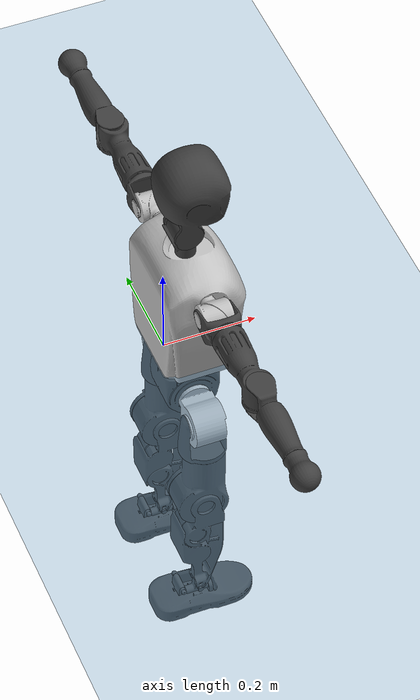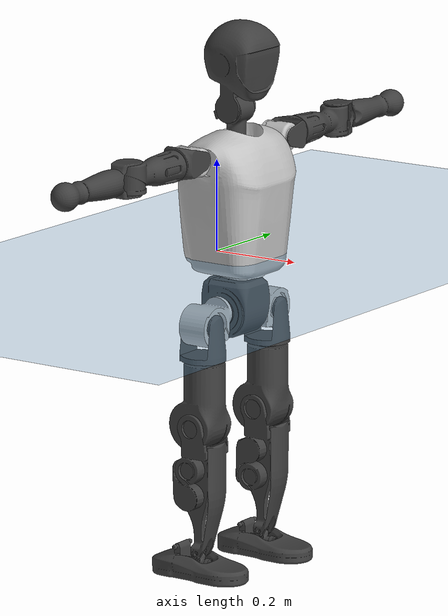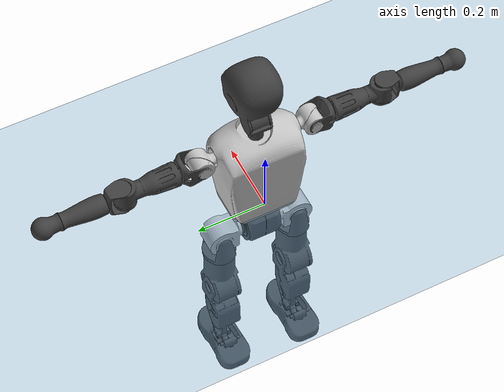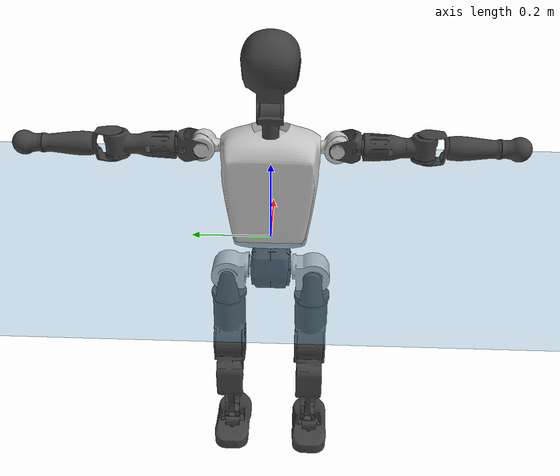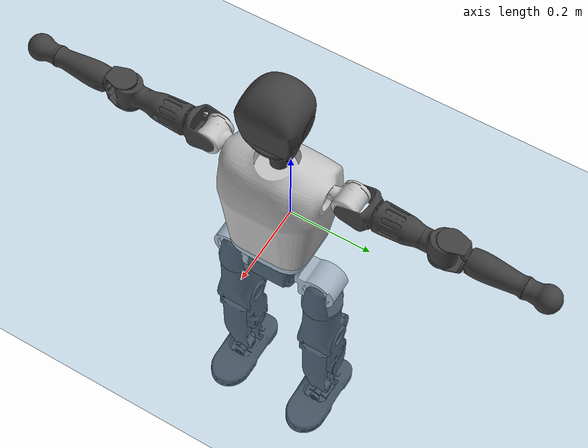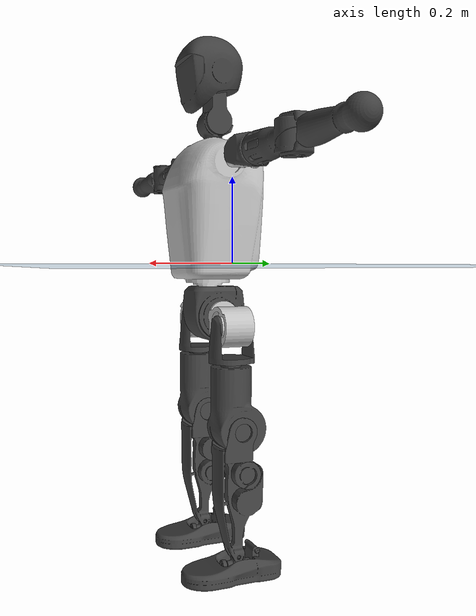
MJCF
<mujoco model="T1">
  <compiler angle="radian" assetdir="assets" balanceinertia="true" inertiafromgeom="false"/>

  <option timestep="0.005" density="1.2" viscosity="2e-05"/>

  <size nkey="1"/>

  <visual>
    <quality shadowsize="8192"/>
    <map shadowclip="0.5"/>
  </visual>

  <default>
    <default class="/">
      <joint armature="0.01" damping="0.01" frictionloss="0.1"/>
      <geom contype="0" conaffinity="0" group="1" solref="-1000 -80"/>
      <site size="0.01 0.005 0.005" group="5"/>
      <general forcelimited="true" biastype="affine" gainprm="25" biasprm="0 -25 -0.6"/>
      <default class="t1">
        <geom rgba="0.25 0.25 0.25 1"/>
        <default class="visual">
          <geom type="mesh" group="2"/>
        </default>
        <default class="collision">
          <geom group="3"/>
        </default>
        <default class="foot">
          <geom size="0.1115 0.05 0.015" type="box" condim="6" group="4" priority="1" solimp="0.015 1 0.015"/>
        </default>
        <default class="reward_collision_sphere">
          <geom group="5" rgba="1 0 0 1"/>
        </default>
      </default>
    </default>
  </default>

  <asset>
    <texture type="skybox" colorspace="auto" name="//unnamed_texture_0" builtin="gradient" rgb1="0.95 0.95 0.95" rgb2="0.95 0.95 0.95" width="100" height="600"/>
    <texture type="2d" colorspace="auto" name="texplane" builtin="checker" rgb1="0.345 0.575 0.748" rgb2="0.345 0.575 0.748" markrgb="1 1 1" width="512" height="512"/>
    <material name="MatPlane" class="/" texture="texplane" texuniform="true" texrepeat="2 2" specular="0.9"/>
    <mesh name="Trunk" class="/" file="Trunk.stl"/>
    <mesh name="H1" class="/" file="H1.stl"/>
    <mesh name="H2" class="/" file="H2.stl"/>
    <mesh name="AL1" class="/" file="AL1.stl"/>
    <mesh name="AL2" class="/" file="AL2.stl"/>
    <mesh name="AL3" class="/" file="AL3.stl"/>
    <mesh name="left_hand_link" class="/" file="left_hand_link.stl"/>
    <mesh name="AR1" class="/" file="AR1.stl"/>
    <mesh name="AR2" class="/" file="AR2.stl"/>
    <mesh name="AR3" class="/" file="AR3.stl"/>
    <mesh name="right_hand_link" class="/" file="right_hand_link.stl"/>
    <mesh name="Waist" class="/" file="Waist.stl"/>
    <mesh name="Hip_Pitch_Left" class="/" file="Hip_Pitch_Left.stl"/>
    <mesh name="Hip_Roll_Left" class="/" file="Hip_Roll_Left.stl"/>
    <mesh name="Hip_Yaw_Left" class="/" file="Hip_Yaw_Left.stl"/>
    <mesh name="Shank_Left" class="/" file="Shank_Left.stl"/>
    <mesh name="Ankle_Cross_Left" class="/" file="Ankle_Cross_Left.stl"/>
    <mesh name="left_foot_link" class="/" file="left_foot_link.stl"/>
    <mesh name="Hip_Pitch_Right" class="/" file="Hip_Pitch_Right.stl"/>
    <mesh name="Hip_Roll_Right" class="/" file="Hip_Roll_Right.stl"/>
    <mesh name="Hip_Yaw_Right" class="/" file="Hip_Yaw_Right.stl"/>
    <mesh name="Shank_Right" class="/" file="Shank_Right.stl"/>
    <mesh name="Ankle_Cross_Right" class="/" file="Ankle_Cross_Right.stl"/>
    <mesh name="right_foot_link" class="/" file="right_foot_link.stl"/>
  </asset>

  <worldbody>
    <geom name="floor" class="/" size="100 100 0.125" type="plane" group="0" material="MatPlane"/>
    <light name="toplight_shadow" class="/" pos="0 0 5" dir="0.0990148 0.0990148 -0.990148" type="directional" ambient="0.04 0.04 0.04" diffuse="0.55 0.55 0.55" specular="0.12 0.12 0.12"/>
    <light name="toplight_fill" class="/" pos="0 0 5" dir="0.0990148 0.0990148 -0.990148" type="directional" castshadow="false" ambient="0.04 0.04 0.04" diffuse="0.3 0.3 0.3" specular="0.08 0.08 0.08"/>
    <body name="trunk" childclass="t1" pos="-0.000334303 0.00270729 -0.000796906" quat="1 -2.99948e-05 -8.82276e-06 8.37405e-05">
      <inertial pos="0.0409773 -0.000133292 0.1083" quat="0.999973 -0.000246442 -0.0073209 -0.000484954" mass="10.4219" diaginertia="0.0224124 0.115155 0.0635511"/>
      <joint name="//unnamed_joint_0" type="free" armature="0" damping="0" frictionloss="0"/>
      <geom name="//unnamed_geom_1" class="visual" rgba="0.76 0.76 0.76 1" mesh="Trunk"/>
      <geom name="//unnamed_geom_2" class="collision" size="0.0719452 0.0959269 0.14389" pos="0.045703 0 0.124415" type="box"/>
      <geom name="//unnamed_geom_3" class="reward_collision_sphere" size="0.110316" pos="0.045703 0 0.103679"/>
      <geom name="//unnamed_geom_4" class="reward_collision_sphere" size="0.014389" pos="0.045703 0.0917405 0"/>
      <geom name="//unnamed_geom_5" class="reward_collision_sphere" size="0.014389" pos="0.045703 -0.0917405 0"/>
      <geom name="//unnamed_geom_6" class="reward_collision_sphere" size="0.014389" pos="0.045703 0.115485 0.186622"/>
      <geom name="//unnamed_geom_7" class="reward_collision_sphere" size="0.014389" pos="0.045703 -0.115485 0.186622"/>
      <site name="imu" pos="-0.00459748 0.00300204 0.00113278" size="0.00959269"/>
      <camera name="track" pos="0 -2.1586 0" quat="0.707107 0.707107 0 0" mode="trackcom"/>
      <camera name="ego_camera" pos="0.0929294 0 0.435452" quat="-0.5 -0.5 0.5 0.5"/>
      <body name="H1" pos="0.0491782 -4.44322e-06 0.253351" quat="1 0.000406242 -0.00042747 -0.000284363">
        <inertial pos="0.000773405 0.000942439 0.0610642" quat="0.764963 -0.00856404 0.00189022 0.644015" mass="0.408442" diaginertia="6.46465e-05 0.000336425 0.000175232"/>
        <joint name="AAHead_yaw" pos="0 0 0" axis="0.00412427 -0.000656762 0.999991" range="-1.56537 1.53553" armature="0.00924642" damping="0" frictionloss="0.107884"/>
        <geom name="//unnamed_geom_8" class="visual" mesh="H1"/>
        <body name="H2" pos="-0.00332036 0.00147728 0.0656475" quat="1 -9.28199e-05 -0.000248661 -8.23756e-06">
          <inertial pos="0.00495977 0.00124971 0.10212" quat="0.988526 0.105354 -0.0747684 -0.0782704" mass="0.555275" diaginertia="0.000506147 0.00274049 0.00206452"/>
          <joint name="Head_pitch" pos="0 0 0" axis="-0.00529187 -0.999985 -0.00152506" range="-1.27127 0.366532" armature="0.0103047" damping="0.00963648" frictionloss="0.098186"/>
          <geom name="//unnamed_geom_9" class="visual" mesh="H2"/>
          <geom name="//unnamed_geom_10" class="collision" size="0.0767415" pos="0.00761717 0 0.114047"/>
          <geom name="//unnamed_geom_11" class="reward_collision_sphere" size="0.0863342" pos="0.0152343 0 0.103679"/>
        </body>
      </body>
      <body name="AL1" pos="0.0450809 0.117979 0.230117" quat="1 8.96789e-05 0.000365209 0.000172508">
        <inertial pos="-0.000983918 0.045662 -0.0031354" quat="0.514416 0.491948 -0.500464 0.492847" mass="0.451747" diaginertia="0.00034582 0.00182172 0.000341316"/>
        <joint name="Left_Shoulder_Pitch" pos="0 0 0" axis="-0.00261893 0.999988 -0.00412246" range="-3.31282 1.22372" armature="0.00923906" damping="0.0236269" frictionloss="0.0833621"/>
        <geom name="//unnamed_geom_12" class="visual" rgba="0.76 0.76 0.76 1" mesh="AL1"/>
        <body name="AL2" pos="0.000687023 0.0498804 -0.0006156" quat="1 9.76214e-05 0.000463088 9.05278e-05">
          <inertial pos="0.000619493 0.0418791 -0.00158655" quat="0.490566 0.515001 -0.47638 0.516895" mass="0.144273" diaginertia="0.000100171 0.000485623 0.000214476"/>
          <joint name="Left_Shoulder_Roll" pos="0 0 0" axis="-0.999997 -0.00100753 -0.00209535" range="-1.57749 1.7137" armature="0.00967883" damping="0.00387931" frictionloss="0.0919101"/>
          <geom name="//unnamed_geom_13" class="visual" mesh="AL2"/>
          <body name="AL3" pos="-0.000261663 0.0628979 -0.000361636" quat="1 4.55183e-05 -0.000122971 -9.05757e-05">
            <inertial pos="-0.00127735 0.0920608 0.0013663" quat="0.706099 0.708109 -0.00102841 0.00230574" mass="0.908118" diaginertia="0.00339949 0.01886 0.000714821"/>
            <joint name="Left_Elbow_Pitch" pos="0 0 0" axis="0.00126177 -0.99998 0.00616166" range="-2.26235 2.25601" armature="0.00879454" damping="0.0158295" frictionloss="0.108582"/>
            <geom name="//unnamed_geom_14" class="visual" mesh="AL3"/>
            <geom name="//unnamed_geom_15" class="collision" size="0.0287781 0.0719452" pos="0 0.053965 0" quat="0.707105 0.707108 0 0" type="cylinder"/>
            <geom name="//unnamed_geom_16" class="reward_collision_sphere" size="0.0345337"/>
            <body name="left_hand_link" pos="-0.00241603 0.15825 0.000151584" quat="0.999999 -0.000692213 0.000969065 -1.56478e-05">
              <inertial pos="0.00018432 0.121011 0.00313199" quat="0.704734 0.709469 -0.000980179 0.00179045" mass="0.280177" diaginertia="0.00208619 0.0123438 0.00025872"/>
              <joint name="Left_Elbow_Yaw" pos="0 0 0" axis="-0.0067467 0.00448894 0.999967" range="-2.40557 -0.0215164" armature="0.00974214" damping="0.00754605" frictionloss="0.109029"/>
              <geom name="//unnamed_geom_17" class="visual" mesh="left_hand_link"/>
              <geom name="//unnamed_geom_18" class="collision" size="0.0287781 0.083936" pos="0 0.140309 0" quat="0.707105 0.707108 0 0" type="cylinder"/>
              <geom name="//unnamed_geom_19" class="reward_collision_sphere" size="0.0479635"/>
              <geom name="//unnamed_geom_20" class="reward_collision_sphere" size="0.0335744" pos="0 0.118723 0"/>
              <geom name="//unnamed_geom_21" class="reward_collision_sphere" size="0.0335744" pos="0 0.232049 0"/>
            </body>
          </body>
        </body>
      </body>
      <body name="AR1" pos="0.0461165 -0.114432 0.22919" quat="1 0.000122475 -2.94263e-05 -0.000144418">
        <inertial pos="-0.00238267 -0.0515482 0.00127068" quat="0.504408 0.502887 -0.507955 0.484415" mass="0.459648" diaginertia="0.00033161 0.00184025 0.000342072"/>
        <joint name="Right_Shoulder_Pitch" pos="0 0 0" axis="0.00193309 -0.999888 0.0148699" range="-1.22789 3.3632" armature="0.00920706" damping="0" frictionloss="0.0935017"/>
        <geom name="//unnamed_geom_22" class="visual" rgba="0.76 0.76 0.76 1" mesh="AR1"/>
        <body name="AR2" pos="-0.000643234 -0.0476056 0.00375696" quat="0.999999 -0.000578131 0.00130215 -0.000234348">
          <inertial pos="0.000141463 -0.0404871 0.00292578" quat="0.513777 0.490004 -0.50849 0.487203" mass="0.138861" diaginertia="0.000103395 0.000506407 0.000208131"/>
          <joint name="Right_Shoulder_Roll" pos="0 0 0" axis="-0.999909 -0.00773228 -0.0110739" stiffness="0.00100237" range="-1.70355 1.57691" armature="0.00970358" damping="0.0213151" frictionloss="0.103568"/>
          <geom name="//unnamed_geom_23" class="visual" mesh="AR2"/>
          <body name="AR3" pos="0.0017009 -0.0632297 -0.00235429" quat="1 0.000619009 -1.71656e-05 -0.000578715">
            <inertial pos="-0.000600027 -0.0931203 0.00136875" quat="0.716388 0.697696 -0.000327116 -0.0027673" mass="0.907614" diaginertia="0.00318685 0.0182465 0.000746887"/>
            <joint name="Right_Elbow_Pitch" pos="0 0 0" axis="0.0140663 0.999901 0.000539543" range="-2.28396 2.20794" armature="0.0084231" damping="0.0137892" frictionloss="0.0986879"/>
            <geom name="//unnamed_geom_24" class="visual" mesh="AR3"/>
            <geom name="//unnamed_geom_25" class="collision" size="0.0287781 0.0719452" pos="0 -0.053965 0" quat="0.707105 0.707108 0 0" type="cylinder"/>
            <geom name="//unnamed_geom_26" class="reward_collision_sphere" size="0.0345337"/>
            <body name="right_hand_link" pos="4.46334e-05 -0.15841 0.00059162" quat="1 -1.16714e-05 -3.9386e-06 -3.02566e-06">
              <inertial pos="-0.00249578 -0.115806 -0.00108257" quat="0.706377 0.707767 0.00841151 0.00512738" mass="0.279391" diaginertia="0.00208007 0.0111273 0.00025723"/>
              <joint name="Right_Elbow_Yaw" pos="0 0 0" axis="-0.00588279 -0.0024984 0.99998" range="0.012676 2.43207" armature="0.0085852" damping="0" frictionloss="0.0913454"/>
              <geom name="//unnamed_geom_27" class="visual" mesh="right_hand_link"/>
              <geom name="//unnamed_geom_28" class="collision" size="0.0287781 0.083936" pos="0 -0.140309 0" quat="0.707105 0.707108 0 0" type="cylinder"/>
              <geom name="//unnamed_geom_29" class="reward_collision_sphere" size="0.0479635"/>
              <geom name="//unnamed_geom_30" class="reward_collision_sphere" size="0.0335744" pos="0 -0.118723 0"/>
              <geom name="//unnamed_geom_31" class="reward_collision_sphere" size="0.0335744" pos="0 -0.232049 0"/>
            </body>
          </body>
        </body>
      </body>
      <body name="Waist" pos="0.0480706 -0.00172671 -0.117359" quat="1 0.000407286 -0.00010494 -0.000406699">
        <inertial pos="0.00519209 -0.00164546 0.0103903" quat="0.983038 0.00169889 -0.183393 0.000979202" mass="2.29982" diaginertia="0.00134394 0.00796277 0.00554591"/>
        <joint name="Waist" pos="0 0 0" axis="-0.00621642 -0.00366292 0.999974" range="-1.618 1.62763" armature="0.00929515" damping="0.00341723" frictionloss="0.0937035"/>
        <geom name="//unnamed_geom_32" class="visual" mesh="Waist"/>
        <body name="Hip_Pitch_Left" pos="0.000980366 0.114544 0.0014115" quat="1 -8.07916e-05 -0.000174994 -0.000267827">
          <inertial pos="-0.00168593 -0.00862888 -0.0191" quat="0.97586 0.218136 0.0102787 -0.00288518" mass="0.91554" diaginertia="0.000479646 0.00211354 0.00151286"/>
          <joint name="Left_Hip_Pitch" pos="0 0 0" axis="0.0107022 0.999939 -0.00263625" range="-1.76029 1.55841" armature="0.00949043" damping="0" frictionloss="0.0872616"/>
          <geom name="//unnamed_geom_33" class="visual" rgba="0.76 0.76 0.76 1" mesh="Hip_Pitch_Left"/>
          <body name="Hip_Roll_Left" pos="0.00373293 0.000917769 -0.0205421" quat="1 -4.08222e-05 0.000240222 -0.000107631">
            <inertial pos="0.00238236 -0.000645494 -0.0560651" quat="0.69825 -0.00402675 -0.0112913 0.715754" mass="0.353687" diaginertia="0.000456369 0.00237095 0.000628803"/>
            <joint name="Left_Hip_Roll" pos="0 0 0" axis="-0.999965 -0.00240144 -0.00797735" range="-1.51763 0.197809" armature="0.00948495" damping="0.0220928" frictionloss="0.0838912"/>
            <geom name="//unnamed_geom_34" class="visual" mesh="Hip_Roll_Left"/>
            <geom name="//unnamed_geom_35" class="reward_collision_sphere" size="0.0527598"/>
            <body name="Hip_Yaw_Left" pos="-0.00105255 0.000199201 -0.0852903" quat="1 5.01898e-05 -2.05971e-05 -7.31363e-05">
              <inertial pos="-0.00365646 -0.00129793 -0.0937612" quat="0.693047 -0.0414338 -0.0247518 0.719275" mass="1.8361" diaginertia="0.00652381 0.0377097 0.00308326"/>
              <joint name="Left_Hip_Yaw" pos="0 0 0" axis="-0.00891732 -0.00327363 -0.999955" range="-0.991605 1.0542" armature="0.00836492" damping="0" frictionloss="0.0887501"/>
              <geom name="//unnamed_geom_36" class="visual" mesh="Hip_Yaw_Left"/>
              <geom name="//unnamed_geom_37" class="collision" size="0.0479635 0.0767415" type="cylinder"/>
              <body name="Shank_Left" pos="-0.0119238 0.00114229 -0.137864" quat="1 -2.91632e-05 0.000180944 -0.000113962">
                <inertial pos="-0.00162256 0.000577783 -0.13166" quat="0.997103 0.00338467 -0.0285889 0.0704017" mass="1.59143" diaginertia="0.0094413 0.0529523 0.0022746"/>
                <joint name="Left_Knee_Pitch" pos="0 0 0" axis="0.00182284 0.999806 0.0195961" range="-0.0342465 2.33552" armature="0.0107994" damping="0" frictionloss="0.0902401"/>
                <geom name="//unnamed_geom_38" class="visual" mesh="Shank_Left"/>
                <geom name="//unnamed_geom_39" class="collision" size="0.0479635 0.0719452" pos="0 0 -0.124415" type="cylinder"/>
                <geom name="//unnamed_geom_40" class="reward_collision_sphere" size="0.0623525"/>
                <body name="Ankle_Cross_Left" pos="-0.000659693 -0.00265904 -0.289945" quat="1 -5.11318e-05 5.26696e-05 0.000251318">
                  <inertial pos="-0.00327311 0.00079655 -0.00930111" quat="0.442121 0.54969 0.551623 0.445065" mass="0.0678212" diaginertia="7.45968e-06 3.87638e-05 1.40021e-05"/>
                  <joint name="Left_Ankle_Pitch" pos="0 0 0" axis="0.00497676 0.999944 0.00936195" range="-0.858384 0.317502" armature="0.00952592" damping="0.0104633" frictionloss="0.0982377"/>
                  <geom name="//unnamed_geom_41" class="visual" mesh="Ankle_Cross_Left"/>
                  <body name="left_foot_link" pos="0.00176856 -0.0012614 -0.0118189" quat="0.999999 -0.000570132 0.000625898 -0.000905341">
                    <inertial pos="-0.000565309 0.000242023 -0.00946412" quat="-0.000244258 0.620241 -0.000567215 0.784411" mass="0.567348" diaginertia="0.000651452 0.00343253 0.00245493"/>
                    <joint name="Left_Ankle_Roll" pos="0 0 0" axis="-0.999855 0.0155718 0.00685639" stiffness="0.00614048" range="-0.494952 0.494639" armature="0.00972453" damping="0.0102003" frictionloss="0.0958002"/>
                    <geom name="//unnamed_geom_42" class="visual" mesh="left_foot_link"/>
                    <geom name="left_foot" class="foot" size="0.110822 0.049136 0.0160334" pos="0.00761717 0 -0.0155519"/>
                    <geom name="//unnamed_geom_44" class="reward_collision_sphere" size="0.049882" pos="0.00761717 0 -0.0155519"/>
                    <geom name="//unnamed_geom_45" class="reward_collision_sphere" size="0.0287781" pos="0.0723631 -0.0248239 -0.0155519"/>
                    <geom name="//unnamed_geom_46" class="reward_collision_sphere" size="0.0287781" pos="-0.0533202 -0.0248239 -0.0155519"/>
                    <site name="left_foot" class="foot" pos="0.00761717 0 -0.0155519" size="0.00959269"/>
                  </body>
                </body>
              </body>
            </body>
          </body>
        </body>
        <body name="Hip_Pitch_Right" pos="-0.00299117 -0.112111 0.00147659" quat="1 -9.98309e-05 0.000144966 -0.000347188">
          <inertial pos="0.00147601 0.00788697 -0.0170801" quat="0.9741 -0.224843 0.0234327 0.00502279" mass="0.921055" diaginertia="0.000470285 0.00218604 0.00158045"/>
          <joint name="Right_Hip_Pitch" pos="0 0 0" axis="-0.00503923 -0.999981 -0.00364447" range="-1.51563 1.76619" armature="0.00997129" damping="0.0226946" frictionloss="0.0985325"/>
          <geom name="//unnamed_geom_47" class="visual" rgba="0.76 0.76 0.76 1" mesh="Hip_Pitch_Right"/>
          <body name="Hip_Roll_Right" pos="-0.00159685 0.00135669 -0.0184147" quat="1 -9.45347e-05 0.000335107 -0.000105358">
            <inertial pos="-0.000641755 0.000307404 -0.0527739" quat="0.707363 -0.00596513 -0.0067594 0.706793" mass="0.340008" diaginertia="0.00044845 0.00228619 0.000632482"/>
            <joint name="Right_Hip_Roll" pos="0 0 0" axis="-0.999823 0.0180777 0.00521135" range="-0.146722 1.51923" armature="0.0100395" damping="0" frictionloss="0.105357"/>
            <geom name="//unnamed_geom_48" class="visual" mesh="Hip_Roll_Right"/>
            <geom name="//unnamed_geom_49" class="reward_collision_sphere" size="0.0527598"/>
            <body name="Hip_Yaw_Right" pos="0.00172602 0.000677106 -0.0833414" quat="1 -3.87307e-06 -8.01377e-06 2.60398e-05">
              <inertial pos="-0.00681212 -0.000209401 -0.0919604" quat="0.711684 -0.0306618 -0.0312648 0.701134" mass="1.85839" diaginertia="0.0067162 0.038059 0.00300822"/>
              <joint name="Right_Hip_Yaw" pos="0 0 0" axis="0.00135999 0.017164 -0.999852" range="-0.993183 0.996841" armature="0.00950023" damping="0.0163337" frictionloss="0.0952828"/>
              <geom name="//unnamed_geom_50" class="visual" mesh="Hip_Yaw_Right"/>
              <geom name="//unnamed_geom_51" class="collision" size="0.0479635 0.0767415" type="cylinder"/>
              <body name="Shank_Right" pos="-0.0110382 0.000937697 -0.138684" quat="1 -0.000213318 0.000143544 4.56454e-05">
                <inertial pos="-0.00415126 0.00220684 -0.12996" quat="0.999329 0.000362864 -0.0217271 -0.0295014" mass="1.62015" diaginertia="0.00884828 0.0523497 0.00230889"/>
                <joint name="Right_Knee_Pitch" pos="0 0 0" axis="-0.0117551 -0.999906 0.00705203" stiffness="0.0073033" range="-2.35262 -0.0297047" armature="0.00927756" damping="0.00901324" frictionloss="0.0836044"/>
                <geom name="//unnamed_geom_52" class="visual" mesh="Shank_Right"/>
                <geom name="//unnamed_geom_53" class="collision" size="0.0479635 0.0719452" pos="0 0 -0.124415" type="cylinder"/>
                <geom name="//unnamed_geom_54" class="reward_collision_sphere" size="0.0623525"/>
                <body name="Ankle_Cross_Right" pos="-0.00249886 -0.00325889 -0.292125" quat="0.999999 -0.000304679 -0.000227254 -0.00106619">
                  <inertial pos="-0.00146909 -0.00254068 -0.00725399" quat="0.432193 0.55737 0.548605 0.448977" mass="0.0608153" diaginertia="7.27589e-06 3.68175e-05 1.32935e-05"/>
                  <joint name="Right_Ankle_Pitch" pos="0 0 0" axis="0.00182011 -0.999998 0.000165569" range="-0.359042 0.923461" armature="0.00945467" damping="0.0159329" frictionloss="0.0979822"/>
                  <geom name="//unnamed_geom_55" class="visual" mesh="Ankle_Cross_Right"/>
                  <body name="right_foot_link" pos="-0.00125319 -0.0021819 -0.0104277" quat="1 0.000362346 -0.000317759 0.00016622">
                    <inertial pos="-0.000610059 -0.0025585 -0.00918399" quat="0.000548208 0.620122 0.000110788 0.784505" mass="0.601976" diaginertia="0.000695429 0.00337948 0.00256574"/>
                    <joint name="Right_Ankle_Roll" pos="0 0 0" axis="-1 -2.28322e-05 0.000101848" range="-0.473324 0.420101" armature="0.00947931" damping="0" frictionloss="0.0941261"/>
                    <geom name="//unnamed_geom_56" class="visual" mesh="right_foot_link"/>
                    <geom name="right_foot" class="foot" size="0.100742 0.0465666 0.0143639" pos="0.00761717 0 -0.0155519"/>
                    <geom name="//unnamed_geom_58" class="reward_collision_sphere" size="0.0383708"/>
                    <geom name="//unnamed_geom_59" class="reward_collision_sphere" size="0.0287781" pos="0.00761717 0 -0.0155519"/>
                    <geom name="//unnamed_geom_60" class="reward_collision_sphere" size="0.0287781" pos="0.0723631 0.0248239 -0.0155519"/>
                    <geom name="//unnamed_geom_61" class="reward_collision_sphere" size="0.0287781" pos="-0.0533202 0.0248239 -0.0155519"/>
                    <site name="right_foot" class="foot" pos="0.00761717 0 -0.0155519" size="0.00959269"/>
                  </body>
                </body>
              </body>
            </body>
          </body>
        </body>
      </body>
    </body>
  </worldbody>

  <contact>
    <pair class="/" geom1="floor" geom2="left_foot" name="//unnamed_contact_0"/>
    <pair class="/" geom1="floor" geom2="right_foot" name="//unnamed_contact_1"/>
  </contact>

  <actuator>
    <general name="AAHead_yaw" class="/" joint="AAHead_yaw" forcerange="-6.72254 6.72254" gainprm="25.329" biasprm="0 -25.329 -0.55655"/>
    <general name="Head_pitch" class="/" joint="Head_pitch" forcerange="-7.4057 7.4057" gainprm="25.329" biasprm="0 -25.329 -0.55655"/>
    <general name="Left_Shoulder_Pitch" class="/" joint="Left_Shoulder_Pitch" forcerange="-15.4103 15.4103" gainprm="25.329" biasprm="0 -25.329 -0.55655"/>
    <general name="Left_Shoulder_Roll" class="/" joint="Left_Shoulder_Roll" forcerange="-18.1418 18.1418" gainprm="25.329" biasprm="0 -25.329 -0.55655"/>
    <general name="Left_Elbow_Pitch" class="/" joint="Left_Elbow_Pitch" forcerange="-16.2607 16.2607" gainprm="25.329" biasprm="0 -25.329 -0.55655"/>
    <general name="Left_Elbow_Yaw" class="/" joint="Left_Elbow_Yaw" forcerange="-17.5354 17.5354" gainprm="25.329" biasprm="0 -25.329 -0.55655"/>
    <general name="Right_Shoulder_Pitch" class="/" joint="Right_Shoulder_Pitch" forcerange="-18.1515 18.1515" gainprm="25.329" biasprm="0 -25.329 -0.55655"/>
    <general name="Right_Shoulder_Roll" class="/" joint="Right_Shoulder_Roll" forcerange="-19.0834 19.0834" gainprm="25.329" biasprm="0 -25.329 -0.55655"/>
    <general name="Right_Elbow_Pitch" class="/" joint="Right_Elbow_Pitch" forcerange="-17.2561 17.2561" gainprm="25.329" biasprm="0 -25.329 -0.55655"/>
    <general name="Right_Elbow_Yaw" class="/" joint="Right_Elbow_Yaw" forcerange="-16.4462 16.4462" gainprm="25.329" biasprm="0 -25.329 -0.55655"/>
    <general name="Waist" class="/" joint="Waist" forcerange="-29.4368 29.4368" gainprm="25.329" biasprm="0 -25.329 -0.55655"/>
    <general name="Left_Hip_Pitch" class="/" joint="Left_Hip_Pitch" forcerange="-43.6775 43.6775" gainprm="25.329" biasprm="0 -25.329 -0.55655"/>
    <general name="Left_Hip_Roll" class="/" joint="Left_Hip_Roll" forcerange="-29.3588 29.3588" gainprm="25.329" biasprm="0 -25.329 -0.55655"/>
    <general name="Left_Hip_Yaw" class="/" joint="Left_Hip_Yaw" forcerange="-25.886 25.886" gainprm="25.329" biasprm="0 -25.329 -0.55655"/>
    <general name="Left_Knee_Pitch" class="/" joint="Left_Knee_Pitch" forcerange="-59.1313 59.1313" gainprm="25.329" biasprm="0 -25.329 -0.55655"/>
    <general name="Left_Ankle_Pitch" class="/" joint="Left_Ankle_Pitch" forcerange="-17.1782 17.1782" gainprm="25.329" biasprm="0 -25.329 -0.55655"/>
    <general name="Left_Ankle_Roll" class="/" joint="Left_Ankle_Roll" forcerange="-12.8696 12.8696" gainprm="25.329" biasprm="0 -25.329 -0.55655"/>
    <general name="Right_Hip_Pitch" class="/" joint="Right_Hip_Pitch" forcerange="-40.7892 40.7892" gainprm="25.329" biasprm="0 -25.329 -0.55655"/>
    <general name="Right_Hip_Roll" class="/" joint="Right_Hip_Roll" forcerange="-29.0076 29.0076" gainprm="25.329" biasprm="0 -25.329 -0.55655"/>
    <general name="Right_Hip_Yaw" class="/" joint="Right_Hip_Yaw" forcerange="-31.8084 31.8084" gainprm="25.329" biasprm="0 -25.329 -0.55655"/>
    <general name="Right_Knee_Pitch" class="/" joint="Right_Knee_Pitch" forcerange="-58.7814 58.7814" gainprm="25.329" biasprm="0 -25.329 -0.55655"/>
    <general name="Right_Ankle_Pitch" class="/" joint="Right_Ankle_Pitch" forcerange="-19.673 19.673" gainprm="25.329" biasprm="0 -25.329 -0.55655"/>
    <general name="Right_Ankle_Roll" class="/" joint="Right_Ankle_Roll" forcerange="-14.9249 14.9249" gainprm="25.329" biasprm="0 -25.329 -0.55655"/>
  </actuator>

  <sensor>
    <gyro site="imu" name="imu_angular_velocity"/>
    <velocimeter site="imu" name="imu_linear_velocity"/>
    <framelinvel objtype="site" objname="left_foot" name="left_foot_global_linear_velocity"/>
    <framelinvel objtype="site" objname="right_foot" name="right_foot_global_linear_velocity"/>
  </sensor>

  <keyframe>
    <key name="home" qpos="0 0 0.6385 1 0 0 0 0 0 0 1.4 0 -0.4 0 -1.4 0 0.4 0 -0.4 0 0 0.8 -0.4 0 0.4 0 0 -0.8 0.4 0"/>
  </keyframe>
</mujoco>
